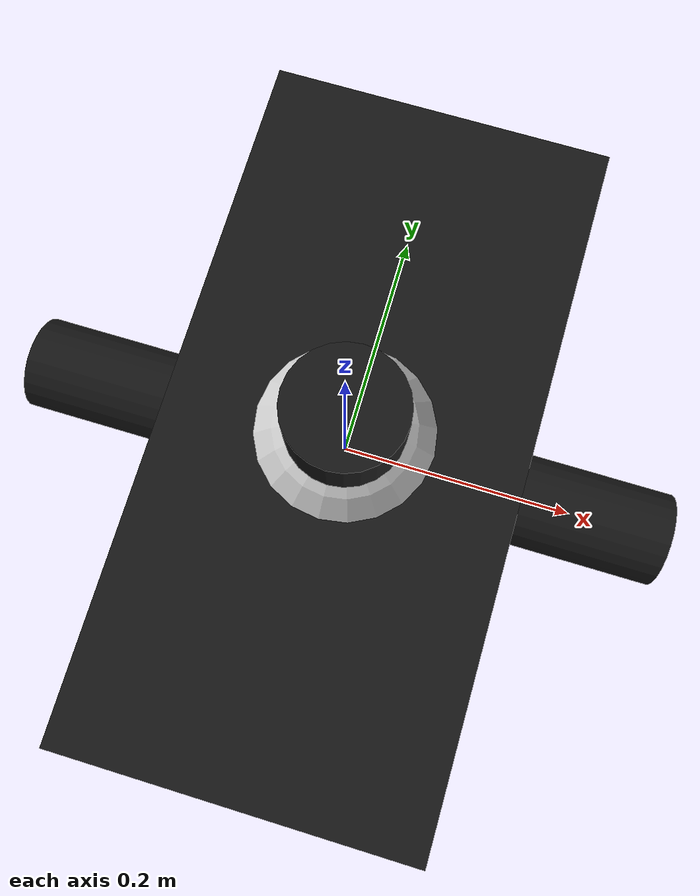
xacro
<?xml version="1.0"?>
<robot xmlns:sensor="http://playerstage.sourceforge.net/gazebo/xmlschema/#sensor"
	 xmlns:controller="http://playerstage.sourceforge.net/gazebo/xmlschema/#controller"
	 xmlns:interface="http://playerstage.sourceforge.net/gazebo/xmlschema/#interface"
   xmlns:xacro="http://ros.org/wiki/xacro"
	 name="human">

  <xacro:property name="M_PI" value="3.14159"/>

	<xacro:macro name="black">
		<material name="black">
			<color rgba="0.1 0.1 0.1 0.9"/>
		</material>
	</xacro:macro>

	<xacro:macro name="white">
		<material name="white">
			<color rgba="0.8 0.8 0.8 0.9"/>
		</material>
	</xacro:macro>

  <xacro:macro name="default_gazebo" params="name material">
 		<gazebo reference="${name}">
			<material>${material}</material>
			<selfCollide>false</selfCollide>
			<turnGravityOff>True</turnGravityOff>
		</gazebo>
  </xacro:macro>

  <xacro:macro name="default_inertial" params="mass">
  	<inertial>
	  	<mass value="${mass}" />
		  <inertia ixx="0.001" ixy="0.0" ixz="0.0"
                   iyy="0.001" iyz="0.0"
                   izz="0.001" />
		</inertial>
  </xacro:macro>

	<xacro:macro name="shape_cylinder" params="name l r xyz rpy mass material *rviz_color">
		<link name="${name}">
			<visual>
				<origin xyz="${xyz}" rpy="${rpy}" />
				<geometry>
					<cylinder length="${l}" radius="${r}" />
				</geometry>
			  <xacro:insert_block name="rviz_color" />
      </visual>
      <collision>
				<origin xyz="${xyz}" rpy="${rpy}" />
				<geometry>
					<cylinder length="${l}" radius="${r}" />
				</geometry>
      </collision>
      <xacro:default_inertial mass="${mass}" />
    </link>
    <xacro:default_gazebo name="${name}" material="${material}" />
	</xacro:macro>

	<xacro:macro name="shape_sphere" params="name r xyz rpy mass material *rviz_color">
		<link name="${name}">
			<visual>
				<origin xyz="${xyz}" rpy="${rpy}" />
				<geometry>
					<sphere radius="${r}" />
				</geometry>
			  <xacro:insert_block name="rviz_color" />
      </visual>
      <collision>
				<origin xyz="${xyz}" rpy="${rpy}" />
				<geometry>
					<sphere radius="${r}" />
				</geometry>
      </collision>
      <xacro:default_inertial mass="${mass}" />
    </link>
    <xacro:default_gazebo name="${name}" material="${material}" />
	</xacro:macro>

	<xacro:macro name="shape_box" params="name lwh xyz rpy mass material *rviz_color">
		<link name="${name}">
			<visual>
				<origin xyz="${xyz}" rpy="${rpy}" />
				<geometry>
					<box size="${lwh}" />
				</geometry>
			  <xacro:insert_block name="rviz_color" />
      </visual>
      <collision>
				<origin xyz="${xyz}" rpy="${rpy}" />
					<geometry>
						<box size="${lwh}" />
					</geometry>
      </collision>
      <xacro:default_inertial mass="${mass}" />
    </link>
    <xacro:default_gazebo name="${name}" material="${material}" />
	</xacro:macro>

  <xacro:shape_box name="base_footprint" lwh="0 0 0" xyz="0 0 0" rpy="0 0 0" mass="10" material="Gazebo/FlatBlack">
    <xacro:black />
  </xacro:shape_box>

  <xacro:shape_box name="torso_1" lwh="0.30 0.60 0.13" xyz="0 0 0" rpy="0 0 0" mass="10" material="Gazebo/FlatBlack">
		<xacro:black />
	</xacro:shape_box>

  <xacro:shape_sphere name="head_1" r="0.10" xyz="0 0 0" rpy="0 0 0" mass="5" material="Gazebo/FlatWhite">
		<xacro:white />
	</xacro:shape_sphere>

  <xacro:shape_cylinder name="neck_1" l="0.28" r="0.05" xyz="0 0 0" rpy="${M_PI/2} 0 0" mass="5" material="Gazebo/FlatBlack">
		<xacro:black />
	</xacro:shape_cylinder>

  <xacro:shape_sphere name="left_shoulder_1" r="0.05" xyz="0 0 0" rpy="0 0 0" mass="5" material="Gazebo/FlatWhite">
		<xacro:white />
	</xacro:shape_sphere>

  <xacro:shape_sphere name="right_shoulder_1" r="0.05" xyz="0 0 0" rpy="0 0 0" mass="5" material="Gazebo/FlatWhite">
		<xacro:white />
	</xacro:shape_sphere>

  <xacro:shape_cylinder name="right_upper_arm" l="0.28" r="0.05" xyz="0 0 0" rpy="0 0 0" mass="5" material="Gazebo/FlatBlack">
		<xacro:black />
	</xacro:shape_cylinder>

  <xacro:shape_cylinder name="left_upper_arm" l="0.28" r="0.05" xyz="0 0 0" rpy="0 0 0" mass="5" material="Gazebo/FlatBlack">
		<xacro:black />
	</xacro:shape_cylinder>

	<link name="left_elbow_1">
	  <visual>
				<origin xyz="0.14 0 0" rpy="0 ${M_PI/2} 0" />
				<geometry>
					<cylinder length="0.28" radius="0.04" />
				</geometry>
				<xacro:black />
      </visual>
      <collision>
				<origin xyz="0.14 0 0" rpy="0 ${M_PI/2} 0" />
				<geometry>
					<cylinder length="0.28" radius="0.04" />
				</geometry>
      </collision>
	  <inertial>
		<mass value="0.001" />
		<inertia ixx="0.001" ixy="0.0" ixz="0.0"
                   iyy="0.001" iyz="0.0"
                   izz="0.001" />
	  </inertial>
    </link>
     <gazebo reference="left_elbow_1">
      <mu1 value="100.0" />
      <mu2 value="100.0" />
      <kp  value="1000000.0" />
      <kd  value="1.0" />
      <material>Gazebo/FlatBlack</material>
	  <selfCollide>false</selfCollide>
	  <turnGravityOff>True</turnGravityOff>
    </gazebo>

	<link name="right_elbow_1">
	  <visual>
				<origin xyz="-0.14 0 0" rpy="0 ${-M_PI/2} 0" />
				<geometry>
					<cylinder length="0.28" radius="0.04" />
				</geometry>
				<xacro:black />
      </visual>
      <collision>
				<origin xyz="-0.14 0 0" rpy="0 ${-M_PI/2} 0" />
				<geometry>
					<cylinder length="0.28" radius="0.04" />
				</geometry>
      </collision>
	  <inertial>
		<mass value="0.001" />
		<inertia ixx="0.001" ixy="0.0" ixz="0.0"
                   iyy="0.001" iyz="0.0"
                   izz="0.001" />
	  </inertial>
    </link>
    <gazebo reference="right_elbow_1">
      <mu1 value="100.0" />
      <mu2 value="100.0" />
      <kp  value="1000000.0" />
      <kd  value="1.0" />
      <material>Gazebo/FlatBlack</material>
	  <selfCollide>false</selfCollide>
	  <turnGravityOff>True</turnGravityOff>
    </gazebo>

  <xacro:shape_sphere name="left_hand_1" r="0.03" xyz="0 0 0" rpy="0 0 0" mass="1" material="Gazebo/FlatWhite">
		<xacro:white />
	</xacro:shape_sphere>

  <xacro:shape_sphere name="right_hand_1" r="0.03" xyz="0 0 0" rpy="0 0 0" mass="1" material="Gazebo/FlatWhite">
		<xacro:white />
	</xacro:shape_sphere>

	<!-- when "fixed" type joint is used, transformation isn't shown in gazebo, use continuous instead' -->
  <joint name="base_footprint_torso_1" type="floating">
    <parent link="base_footprint"/>
    <child link="torso_1"/>
    <origin xyz="0 0 0" rpy="0 0 0" />
  </joint>

  <joint name="torso_1_head_1" type="floating">
    <parent link="torso_1"/>
    <child link="head_1"/>
    <origin xyz="0 0 0" rpy="0 0 0" />
  </joint>

  <joint name="torso_1_neck_1" type="floating">
    <parent link="torso_1"/>
    <child link="neck_1"/>
    <origin xyz="0 0 0" rpy="0 0 0" />
  </joint>

  <joint name="torso_left_shoulder_1" type="floating">
    <parent link="torso_1"/>
    <child link="left_shoulder_1"/>
    <origin xyz="0 0 0" rpy="0 0 0" />
  </joint>

  <joint name="torso_right_shoulder_1" type="floating">
    <parent link="torso_1"/>
    <child link="right_shoulder_1"/>
    <origin xyz="0 0 0" rpy="0 0 0" />
  </joint>

  <joint name="right_shoulder_1_right_upper_arm" type="floating">
    <parent link="right_shoulder_1"/>
    <child link="right_upper_arm"/>
    <origin xyz="0 0 0" rpy="0 0 0" />
  </joint>

  <joint name="left_shoulder_1_left_upper_arm" type="floating">
    <parent link="left_shoulder_1"/>
    <child link="left_upper_arm"/>
    <origin xyz="0 0 0" rpy="0 0 0" />
  </joint>

  <joint name="right_upper_arm_right_elbow_1" type="floating">
    <parent link="right_upper_arm"/>
    <child link="right_elbow_1"/>
    <origin xyz="0 0 0" rpy="0 0 0" />
  </joint>

  <joint name="left_upper_arm_left_elbow_1" type="floating">
    <parent link="left_upper_arm"/>
    <child link="left_elbow_1"/>
    <origin xyz="0 0 0" rpy="0 0 0" />
  </joint>

  <joint name="right_elbow_1_right_hand_1" type="floating">
    <parent link="right_elbow_1"/>
    <child link="right_hand_1"/>
    <origin xyz="0 0 0" rpy="0 0 0" />
  </joint>

  <joint name="left_elbow_1_left_hand_1" type="floating">
    <parent link="left_elbow_1"/>
    <child link="left_hand_1"/>
    <origin xyz="0 0 0" rpy="0 0 0" />
  </joint>

</robot>
